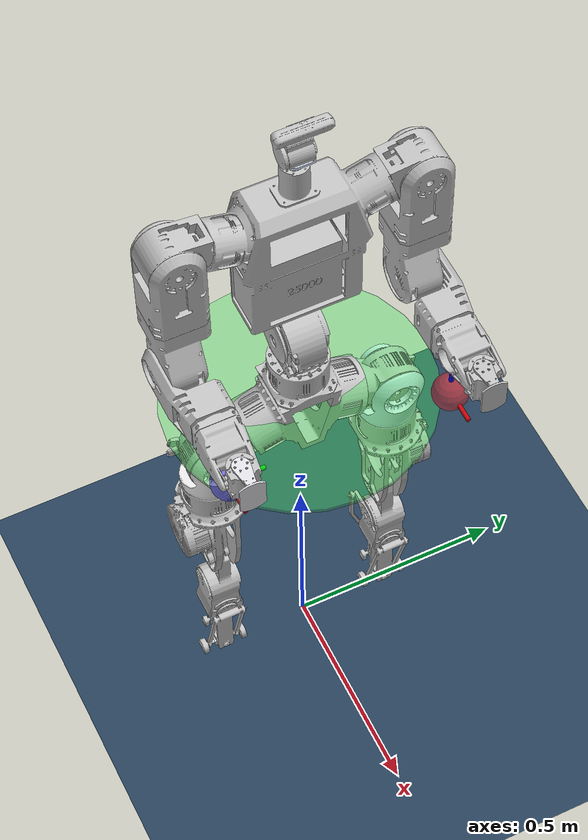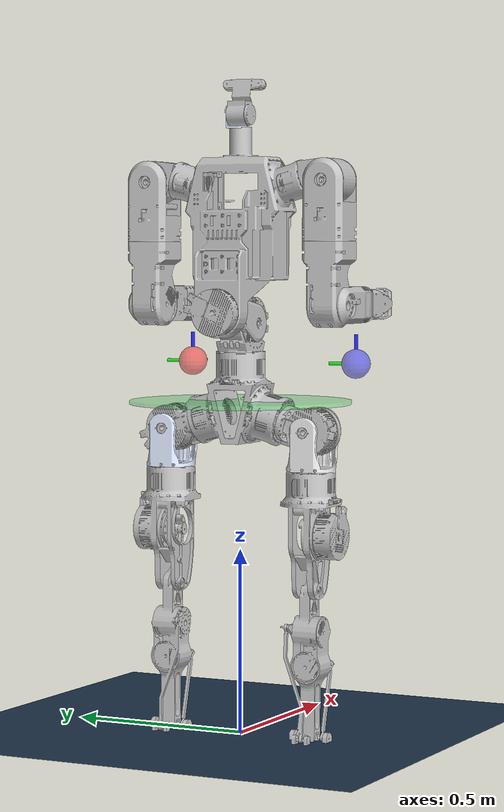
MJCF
<mujoco model="hv1 scene interactive">

  <include file="/home/rabisankar/IsaacLab/source/isaaclab_assets/data/custom_robot/urdf_mesh/hv1/hv1.xml"/>

  <statistic center="0.0 0.0 1.0" extent="2.0"/>

  <visual>
    <headlight diffuse="0.6 0.6 0.6" ambient="0.1 0.1 0.1" specular="0.9 0.9 0.9"/>
    <rgba haze="0.15 0.25 0.35 1"/>
    <global azimuth="-140" elevation="-20"/>
  </visual>

  <asset>
    <texture type="skybox" builtin="flat" rgb1="0 0 0" rgb2="0 0 0" width="512" height="3072"/>
    <texture type="2d" name="groundplane" builtin="checker" mark="edge"
             rgb1="0.2 0.3 0.4" rgb2="0.1 0.2 0.3" markrgb="0.8 0.8 0.8"
             width="300" height="300"/>
    <material name="groundplane" texture="groundplane" texuniform="true"
              texrepeat="5 5" reflectance="0.2"/>
  </asset>

  <worldbody>
    <light pos="1 0 3.5" dir="0 0 -1" directional="true"/>
    <geom name="floor" size="0 0 0.05" type="plane" material="groundplane"/>

    <!-- Left EE target: red translucent sphere. Initial pose ≈ default
         standing left wrist in world frame. -->
    <body name="left_ee_target" mocap="true" pos="0.20 0.25 1.00" quat="1 0 0 0">
      <geom type="sphere" size="0.04" rgba="1.0 0.2 0.2 0.55"
            contype="0" conaffinity="0" group="2"/>
      <!-- Small axis triad so orientation is visible -->
      <geom type="cylinder" fromto="0 0 0  0.08 0 0" size="0.005"
            rgba="1 0 0 0.8" contype="0" conaffinity="0" group="2"/>
      <geom type="cylinder" fromto="0 0 0  0 0.08 0" size="0.005"
            rgba="0 1 0 0.8" contype="0" conaffinity="0" group="2"/>
      <geom type="cylinder" fromto="0 0 0  0 0 0.08" size="0.005"
            rgba="0 0 1 0.8" contype="0" conaffinity="0" group="2"/>
    </body>

    <!-- Right EE target: blue translucent sphere -->
    <body name="right_ee_target" mocap="true" pos="0.20 -0.25 1.00" quat="1 0 0 0">
      <geom type="sphere" size="0.04" rgba="0.2 0.2 1.0 0.55"
            contype="0" conaffinity="0" group="2"/>
      <geom type="cylinder" fromto="0 0 0  0.08 0 0" size="0.005"
            rgba="1 0 0 0.8" contype="0" conaffinity="0" group="2"/>
      <geom type="cylinder" fromto="0 0 0  0 0.08 0" size="0.005"
            rgba="0 1 0 0.8" contype="0" conaffinity="0" group="2"/>
      <geom type="cylinder" fromto="0 0 0  0 0 0.08" size="0.005"
            rgba="0 0 1 0.8" contype="0" conaffinity="0" group="2"/>
    </body>

    <!-- Body-height target: thin green disk anchored to world XY=0, only
         Z is read by the deploy script. Drag UP/DOWN to set target height. -->
    <body name="body_height_target" mocap="true" pos="0 0 0.90" quat="1 0 0 0">
      <geom type="cylinder" size="0.30 0.005" rgba="0.2 0.9 0.3 0.35"
            contype="0" conaffinity="0" group="2"/>
    </body>
  </worldbody>

</mujoco>

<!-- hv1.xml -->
<mujoco model="HV1">
  <compiler angle="radian"/>

  <option timestep="0.005" iterations="50" solver="Newton" gravity="0 0 -9.81"/>

  <default>
    <!-- Legs class: hip_*, knee, waist_* (Isaac "legs" actuator: 85 Nm, X12-320) -->
    <default class="legs_joint">
      <joint damping="0.350134" armature="0.326938" frictionloss="1.694307"/>
    </default>
    <!-- Ankle/wrist-roll class: X6-60, 20 Nm -->
    <default class="ankle_wristroll_joint">
      <joint damping="0.165640" armature="0.019603" frictionloss="0.321816"/>
    </default>
    <!-- Shoulder/elbow class: X8-120, 43 Nm -->
    <default class="shoulder_elbow_joint">
      <joint damping="0.379237" armature="0.065893" frictionloss="0.849291"/>
    </default>
    <!-- Wrist-pitch/yaw + neck class: X4-36, 10.5 Nm -->
    <default class="wrist_neck_joint">
      <joint damping="0.154954" armature="0.045213" frictionloss="0.388995"/>
    </default>
    <!-- Robot-body geom class — scoped via childclass on pelvis so the world
         floor in scene.xml stays at MuJoCo's default contype=1, conaffinity=1. -->
    <default class="robot">
      <geom contype="1" conaffinity="0"/>
    </default>
  </default>

  <asset>
    <mesh name="pelvis" content_type="model/stl" file="meshes/pelvis.STL"/>
    <mesh name="left_hip_pitch_link" content_type="model/stl" file="meshes/left_hip_pitch_link.STL"/>
    <mesh name="left_hip_roll_link" content_type="model/stl" file="meshes/left_hip_roll_link.STL"/>
    <mesh name="left_hip_yaw_link" content_type="model/stl" file="meshes/left_hip_yaw_link.STL"/>
    <mesh name="left_knee_link" content_type="model/stl" file="meshes/left_knee_link.STL"/>
    <mesh name="left_ankle_roll_link" content_type="model/stl" file="meshes/left_ankle_roll_link.STL"/>
    <mesh name="left_ankle_pitch_link" content_type="model/stl" file="meshes/left_ankle_pitch_link.STL"/>
    <mesh name="right_hip_pitch_link" content_type="model/stl" file="meshes/right_hip_pitch_link.STL"/>
    <mesh name="right_hip_roll_link" content_type="model/stl" file="meshes/right_hip_roll_link.STL"/>
    <mesh name="right_hip_yaw_link" content_type="model/stl" file="meshes/right_hip_yaw_link.STL"/>
    <mesh name="right_knee_link" content_type="model/stl" file="meshes/right_knee_link.STL"/>
    <mesh name="right_ankle_roll_link" content_type="model/stl" file="meshes/right_ankle_roll_link.STL"/>
    <mesh name="right_ankle_pitch_link" content_type="model/stl" file="meshes/right_ankle_pitch_link.STL"/>
    <mesh name="imu_in_pelvis" content_type="model/stl" file="meshes/imu_in_pelvis.STL"/>
    <mesh name="waist_yaw_link" content_type="model/stl" file="meshes/waist_yaw_link.STL"/>
    <mesh name="waist_pitch_link" content_type="model/stl" file="meshes/waist_pitch_link.STL"/>
    <mesh name="torso_link" content_type="model/stl" file="meshes/torso_link.STL"/>
    <mesh name="left_shoulder_pitch_link" content_type="model/stl" file="meshes/left_shoulder_pitch_link.STL"/>
    <mesh name="left_shoulder_roll_link" content_type="model/stl" file="meshes/left_shoulder_roll_link.STL"/>
    <mesh name="left_shoulder_yaw_link" content_type="model/stl" file="meshes/left_shoulder_yaw_link.STL"/>
    <mesh name="left_elbow_link" content_type="model/stl" file="meshes/left_elbow_link.STL"/>
    <mesh name="left_wrist_roll_link" content_type="model/stl" file="meshes/left_wrist_roll_link.STL"/>
    <mesh name="left_wrist_pitch_link" content_type="model/stl" file="meshes/left_wrist_pitch_link.STL"/>
    <mesh name="left_wrist_yaw_link" content_type="model/stl" file="meshes/left_wrist_yaw_link.STL"/>
    <mesh name="right_shoulder_pitch_link" content_type="model/stl" file="meshes/right_shoulder_pitch_link.STL"/>
    <mesh name="right_shoulder_roll_link" content_type="model/stl" file="meshes/right_shoulder_roll_link.STL"/>
    <mesh name="right_shoulder_yaw_link" content_type="model/stl" file="meshes/right_shoulder_yaw_link.STL"/>
    <mesh name="right_elbow_link" content_type="model/stl" file="meshes/right_elbow_link.STL"/>
    <mesh name="right_wrist_roll_link" content_type="model/stl" file="meshes/right_wrist_roll_link.STL"/>
    <mesh name="right_wrist_pitch_link" content_type="model/stl" file="meshes/right_wrist_pitch_link.STL"/>
    <mesh name="right_wrist_yaw_link" content_type="model/stl" file="meshes/right_wrist_yaw_link.STL"/>
    <mesh name="neck_yaw_link" content_type="model/stl" file="meshes/neck_yaw_link.STL"/>
    <mesh name="neck_pitch_link" content_type="model/stl" file="meshes/neck_pitch_link.STL"/>
    <mesh name="imu_in_torso" content_type="model/stl" file="meshes/imu_in_torso.STL"/>
  </asset>

  <worldbody>
    <body name="pelvis" pos="0 0 0.95" childclass="robot">
      <freejoint name="floating_base"/>
      <inertial pos="-0.000236 -0.0000623 -0.051576" mass="10.3903"
                fullinertia="0.0211744 0.0243495 0.0203452  0.0000043 0.0000107 0.0000217"/>
      <geom type="mesh" rgba="0.752941 0.752941 0.752941 1" mesh="pelvis"/>
      <geom pos="0.0343 0 -0.042735" quat="1 0 0 0" type="mesh" rgba="0.894118 0.894118 0.894118 1" mesh="imu_in_pelvis"/>
      <!-- IMU site: co-located with the imu_in_pelvis mesh. Frame matches pelvis. -->
      <site name="pelvis_imu" pos="0.0343 0 -0.042735" size="0.01" rgba="1 0 0 0.5"/>
    <body name="left_hip_pitch_link" pos="0 0.13208 -0.10265">
      <inertial pos="0.00483274 0.0704971 -0.0195285" quat="0.78602 0.614887 -0.051529 -0.037835" mass="3.0167" diaginertia="0.00543229 0.00403479 0.00381494"/>
      <joint name="left_hip_pitch_joint" class="legs_joint" pos="0 0 0" axis="0 0.965926 0.258819" range="-3.14 2.5" actuatorfrcrange="-85 85"/>
      <geom type="mesh" rgba="0.752941 0.752941 0.752941 1" mesh="left_hip_pitch_link"/>
      <body name="left_hip_roll_link" pos="0.0485 0.079206 -0.021223">
        <inertial pos="-0.0365728 0.000249622 -0.0546008" quat="0.980258 -0.00304566 0.197697 0.000859755" mass="0.776313" diaginertia="0.00293913 0.00254554 0.00119342"/>
        <joint name="left_hip_roll_joint" class="legs_joint" pos="0 0 0" axis="1 0 0" range="-0.43 3.14" actuatorfrcrange="-85 85"/>
        <geom type="mesh" rgba="0.866667 0.909804 1 1" mesh="left_hip_roll_link"/>
        <body name="left_hip_yaw_link" pos="-0.052 0 -0.106">
          <inertial pos="0.000366468 0.0175814 -0.1195" quat="0.701261 0.0220365 -0.00737475 0.712526" mass="6.72716" diaginertia="0.0182557 0.0153229 0.0112839"/>
          <joint name="left_hip_yaw_joint" class="legs_joint" pos="0 0 0" axis="0 0 1" range="-2.67 2.67" actuatorfrcrange="-85 85"/>
          <geom type="mesh" rgba="0.752941 0.752941 0.752941 1" mesh="left_hip_yaw_link"/>
          <body name="left_knee_link" pos="0 -0.0065 -0.3205">
            <inertial pos="0.00322132 0.00169505 -0.167878" quat="0.633562 0.0101238 -0.00733655 0.773591" mass="4.09904" diaginertia="0.0184953 0.0183524 0.00245948"/>
            <joint name="left_knee_joint" class="legs_joint" pos="0 0 0" axis="0 1 0" range="-0.26 2.18" actuatorfrcrange="-85 85"/>
            <geom type="mesh" rgba="0.752941 0.752941 0.752941 1" mesh="left_knee_link"/>
            <body name="left_ankle_roll_link" pos="0 0.0065 -0.392">
              <inertial pos="8.95514e-06 0 0" quat="0.5 0.5 -0.5 0.5" mass="0.0154781" diaginertia="4.81146e-06 4.4609e-06 8.20118e-07"/>
              <joint name="left_ankle_roll_joint" class="ankle_wristroll_joint" pos="0 0 0" axis="1 0 0" range="-0.26 0.26" actuatorfrcrange="-20 20"/>
              <geom type="mesh" rgba="0.894118 0.894118 0.894118 1" mesh="left_ankle_roll_link"/>
              <body name="left_ankle_pitch_link">
                <inertial pos="0.0196301 -2.67911e-06 -0.0348675" quat="-7.97636e-06 0.709256 7.92795e-06 0.704951" mass="0.903664" diaginertia="0.00482039 0.00381196 0.00110912"/>
                <joint name="left_ankle_pitch_joint" class="ankle_wristroll_joint" pos="0 0 0" axis="0 1 0" range="-0.82 0.58" actuatorfrcrange="-20 20"/>
                <geom type="mesh" rgba="0.752941 0.752941 0.752941 1" mesh="left_ankle_pitch_link"/>
              </body>
            </body>
          </body>
        </body>
      </body>
    </body>
    <body name="right_hip_pitch_link" pos="0 -0.13208 -0.10265">
      <inertial pos="0.00483272 -0.0705397 -0.0193008" quat="0.675909 0.734067 0.0267163 0.0598248" mass="3.01669" diaginertia="0.00543333 0.00403538 0.00381341"/>
      <joint name="right_hip_pitch_joint" class="legs_joint" pos="0 0 0" axis="0 0.965926 0.258819" range="-3.14 2.5" actuatorfrcrange="-85 85"/>
      <geom type="mesh" rgba="0.752941 0.752941 0.752941 1" mesh="right_hip_pitch_link"/>
      <body name="right_hip_roll_link" pos="0.0485 -0.079206 -0.021223">
        <inertial pos="-0.0365723 -0.000247812 -0.0546008" quat="0.980258 0.00300383 0.197698 -0.00088811" mass="0.776323" diaginertia="0.00293914 0.00254556 0.00119343"/>
        <joint name="right_hip_roll_joint" class="legs_joint" pos="0 0 0" axis="1 0 0" range="-3.14 0.43" actuatorfrcrange="-85 85"/>
        <geom type="mesh" rgba="0.894118 0.894118 0.894118 1" mesh="right_hip_roll_link"/>
        <body name="right_hip_yaw_link" pos="-0.052 0 -0.106">
          <inertial pos="0.000282723 -0.017669 -0.118293" quat="0.708894 -0.015184 0.0118055 0.705053" mass="6.72421" diaginertia="0.0182514 0.015368 0.0112394"/>
          <joint name="right_hip_yaw_joint" class="legs_joint" pos="0 0 0" axis="0 0 1" range="-2.67 2.67" actuatorfrcrange="-85 85"/>
          <geom type="mesh" rgba="0.752941 0.752941 0.752941 1" mesh="right_hip_yaw_link"/>
          <body name="right_knee_link" pos="0 0.0065 -0.3205">
            <inertial pos="0.00321609 -0.00188437 -0.16769" quat="0.748939 -0.00667082 0.0100022 0.66253" mass="4.09903" diaginertia="0.0184981 0.0183598 0.00244914"/>
            <joint name="right_knee_joint" class="legs_joint" pos="0 0 0" axis="0 1 0" range="-0.26 2.18" actuatorfrcrange="-85 85"/>
            <geom type="mesh" rgba="0.752941 0.752941 0.752941 1" mesh="right_knee_link"/>
            <body name="right_ankle_roll_link" pos="0 -0.0065 -0.392">
              <inertial pos="8.95514e-06 0 0" quat="0.5 0.5 -0.5 0.5" mass="0.0154781" diaginertia="4.81146e-06 4.4609e-06 8.20118e-07"/>
              <joint name="right_ankle_roll_joint" class="ankle_wristroll_joint" pos="0 0 0" axis="1 0 0" range="-0.26 0.26" actuatorfrcrange="-20 20"/>
              <geom type="mesh" rgba="0.894118 0.894118 0.894118 1" mesh="right_ankle_roll_link"/>
              <body name="right_ankle_pitch_link">
                <inertial pos="0.0196301 -2.67911e-06 -0.0348675" quat="-7.97636e-06 0.709256 7.92795e-06 0.704951" mass="0.903664" diaginertia="0.00482039 0.00381196 0.00110912"/>
                <joint name="right_ankle_pitch_joint" class="ankle_wristroll_joint" pos="0 0 0" axis="0 1 0" range="-0.82 0.58" actuatorfrcrange="-20 20"/>
                <geom type="mesh" rgba="0.752941 0.752941 0.752941 1" mesh="right_ankle_pitch_link"/>
              </body>
            </body>
          </body>
        </body>
      </body>
    </body>
    <body name="waist_yaw_link" pos="0 0 0.0875">
      <inertial pos="0.00106763 -0.00351212 0.0702907" quat="0.711153 0.0356497 0.0344189 0.701289" mass="3.52405" diaginertia="0.00847798 0.00595924 0.00539317"/>
      <joint name="waist_yaw_joint" class="legs_joint" pos="0 0 0" axis="0 0 1" range="-3.14 1.57" actuatorfrcrange="-85 85"/>
      <geom type="mesh" rgba="0.752941 0.752941 0.752941 1" mesh="waist_yaw_link"/>
      <body name="waist_pitch_link" pos="0 0.04025 0.0755">
        <inertial pos="-0.108717 -0.0406682 0.0272727" quat="0.91203 0.287754 -0.242748 -0.162704" mass="3.4556" diaginertia="0.00588002 0.0053455 0.00456862"/>
        <joint name="waist_pitch_joint" class="legs_joint" pos="0 0 0" axis="0 1 0" range="-0.52 0.52" actuatorfrcrange="-85 85"/>
        <geom type="mesh" rgba="0.752941 0.752941 0.752941 1" mesh="waist_pitch_link"/>
        <body name="torso_link" pos="-0.0925 -0.04025 0.03">
          <inertial pos="0.0658056 -0.000104581 0.228454" quat="0.999947 0.00395278 0.00943533 -0.000832899" mass="14.0691" diaginertia="0.0574848 0.0531728 0.0402983"/>
          <joint name="waist_roll_joint" class="legs_joint" pos="0 0 0" axis="1 0 0" range="-0.52 0.52" actuatorfrcrange="-85 85"/>
          <geom type="mesh" rgba="0.752941 0.752941 0.752941 1" mesh="torso_link"/>
          <geom pos="0.0207 0 0.29526" quat="1 0 0 0" type="mesh" rgba="0.894118 0.894118 0.894118 1" mesh="imu_in_torso"/>
          <body name="left_shoulder_pitch_link" pos="0.0925 0.1869 0.35301">
            <inertial pos="0.000150758 0.0707509 -0.00286616" quat="0.986917 0.161204 -0.000301733 0.00267541" mass="1.96424" diaginertia="0.00249227 0.00216789 0.00169732"/>
            <joint name="left_shoulder_pitch_joint" class="shoulder_elbow_joint" pos="0 0 0" axis="0 0.965926 0.258819" range="-3.14 1.57" actuatorfrcrange="-43 43"/>
            <geom type="mesh" rgba="0.752941 0.752941 0.752941 1" mesh="left_shoulder_pitch_link"/>
            <body name="left_shoulder_roll_link" pos="0.037988 0.07537 -0.0040807">
              <inertial pos="-0.0396925 0.000466431 -0.109971" quat="0.999993 0.0002161 -0.00359568 -0.000676973" mass="2.473" diaginertia="0.00636281 0.00518225 0.00319655"/>
              <joint name="left_shoulder_roll_joint" class="shoulder_elbow_joint" pos="0 0 0" axis="1 0 0" range="-0.17 3.25" actuatorfrcrange="-43 43"/>
              <geom type="mesh" rgba="0.752941 0.752941 0.752941 1" mesh="left_shoulder_roll_link"/>
              <body name="left_shoulder_yaw_link" pos="-0.0398 0 -0.169">
                <inertial pos="-0.00198643 0.00117443 -0.125515" quat="0.999974 0.00508104 8.14146e-05 -0.00518414" mass="2.52009" diaginertia="0.00662519 0.00619923 0.00265348"/>
                <joint name="left_shoulder_yaw_joint" class="shoulder_elbow_joint" pos="0 0 0" axis="0 0 1" range="-3.01 2.66" actuatorfrcrange="-43 43"/>
                <geom type="mesh" rgba="0.752941 0.752941 0.752941 1" mesh="left_shoulder_yaw_link"/>
                <body name="left_elbow_link" pos="0 0.03825 -0.161">
                  <inertial pos="0.119955 -0.0289779 4.4903e-05" quat="0.527393 0.531452 0.46868 0.46878" mass="1.48569" diaginertia="0.00302591 0.00251457 0.00137851"/>
                  <joint name="left_elbow_joint" class="shoulder_elbow_joint" pos="0 0 0" axis="0 1 0" range="-0.79 3.14" actuatorfrcrange="-43 43"/>
                  <geom type="mesh" rgba="0.752941 0.752941 0.752941 1" mesh="left_elbow_link"/>
                  <body name="left_wrist_roll_link" pos="0.17 -0.03825 0">
                    <inertial pos="0.0408022 0.0053213 0.000180153" quat="0.260818 0.656732 -0.230306 0.669056" mass="0.519866" diaginertia="0.000563482 0.000511851 0.000444086"/>
                    <joint name="left_wrist_roll_joint" class="ankle_wristroll_joint" pos="0 0 0" axis="1 0 0" range="-2.97 2.97" actuatorfrcrange="-20 20"/>
                    <geom type="mesh" rgba="0.752941 0.752941 0.752941 1" mesh="left_wrist_roll_link"/>
                    <body name="left_wrist_pitch_link" pos="0.129 0.044 0">
                      <inertial pos="0.000242638 -0.044818 -0.000392583" quat="0.708336 0.705021 0.0077674 0.0338435" mass="0.20994" diaginertia="0.00015074 0.000144851 0.000119176"/>
                      <joint name="left_wrist_pitch_joint" class="wrist_neck_joint" pos="0 0 0" axis="0 1 0" range="-0.47 0.47" actuatorfrcrange="-10.5 10.5"/>
                      <geom type="mesh" rgba="0.752941 0.752941 0.752941 1" mesh="left_wrist_pitch_link"/>
                      <body name="left_wrist_yaw_link" pos="0 -0.0445 0.0305">
                        <inertial pos="0.0301222 0 -0.0287392" quat="0.999951 0 0.00993273 0" mass="0.126552" diaginertia="5.82099e-05 5.6808e-05 3.34558e-05"/>
                        <joint name="left_wrist_yaw_joint" class="wrist_neck_joint" pos="0 0 0" axis="0 0 1" range="-1.012 1.012" actuatorfrcrange="-10.5 10.5"/>
                        <geom type="mesh" rgba="0.752941 0.752941 0.752941 1" mesh="left_wrist_yaw_link"/>
                      </body>
                    </body>
                  </body>
                </body>
              </body>
            </body>
          </body>
          <body name="right_shoulder_pitch_link" pos="0.0925 -0.1869 0.35301">
            <inertial pos="0.000150771 -0.0707348 -0.00289051" quat="0.986925 -0.161168 4.82501e-05 -0.00199661" mass="1.96423" diaginertia="0.00249225 0.00216804 0.00169717"/>
            <joint name="right_shoulder_pitch_joint" class="shoulder_elbow_joint" pos="0 0 0" axis="0 0.965926 0.258819" range="-3.14 1.57" actuatorfrcrange="-43 43"/>
            <geom type="mesh" rgba="0.752941 0.752941 0.752941 1" mesh="right_shoulder_pitch_link"/>
            <body name="right_shoulder_roll_link" pos="0.037988 -0.07537 -0.0040807">
              <inertial pos="-0.0396307 -0.000413646 -0.109971" quat="0.999993 0.000460213 -0.00379218 0.000329633" mass="2.473" diaginertia="0.00636312 0.00518196 0.00319653"/>
              <joint name="right_shoulder_roll_joint" class="shoulder_elbow_joint" pos="0 0 0" axis="1 0 0" range="-3.25 0.17" actuatorfrcrange="-43 43"/>
              <geom type="mesh" rgba="0.752941 0.752941 0.752941 1" mesh="right_shoulder_roll_link"/>
              <body name="right_shoulder_yaw_link" pos="-0.0398 0 -0.169">
                <inertial pos="-0.00196887 -0.00117442 -0.125533" quat="0.999974 -0.00507061 8.12743e-05 0.00510172" mass="2.52009" diaginertia="0.00662526 0.00619923 0.00265341"/>
                <joint name="right_shoulder_yaw_joint" class="shoulder_elbow_joint" pos="0 0 0" axis="0 0 1" range="-3.01 2.66" actuatorfrcrange="-43 43"/>
                <geom type="mesh" rgba="0.752941 0.752941 0.752941 1" mesh="right_shoulder_yaw_link"/>
                <body name="right_elbow_link" pos="0 -0.03825 -0.161">
                  <inertial pos="0.119955 0.0289593 -9.97404e-05" quat="0.468406 0.468822 0.528768 0.530289" mass="1.48569" diaginertia="0.00302667 0.00251399 0.00137834"/>
                  <joint name="right_elbow_joint" class="shoulder_elbow_joint" pos="0 0 0" axis="0 1 0" range="-0.79 3.14" actuatorfrcrange="-43 43"/>
                  <geom type="mesh" rgba="0.752941 0.752941 0.752941 1" mesh="right_elbow_link"/>
                  <body name="right_wrist_roll_link" pos="0.17 0.03825 0">
                    <inertial pos="0.0415453 -0.005343 5.39896e-05" quat="-0.252722 0.657124 0.237704 0.66919" mass="0.519866" diaginertia="0.000563372 0.000511782 0.000444265"/>
                    <joint name="right_wrist_roll_joint" class="ankle_wristroll_joint" pos="0 0 0" axis="1 0 0" range="-2.97 2.97" actuatorfrcrange="-20 20"/>
                    <geom type="mesh" rgba="0.752941 0.752941 0.752941 1" mesh="right_wrist_roll_link"/>
                    <body name="right_wrist_pitch_link" pos="0.13 -0.0445 0">
                      <inertial pos="0.000165004 0.0449111 -0.000392583" quat="0.710079 0.703347 -0.010577 -0.0312868" mass="0.20994" diaginertia="0.000150903 0.000144856 0.000119008"/>
                      <joint name="right_wrist_pitch_joint" class="wrist_neck_joint" pos="0 0 0" axis="0 1 0" range="-0.47 0.47" actuatorfrcrange="-10.5 10.5"/>
                      <geom type="mesh" rgba="0.752941 0.752941 0.752941 1" mesh="right_wrist_pitch_link"/>
                      <body name="right_wrist_yaw_link" pos="0 0.0445 0.0305">
                        <inertial pos="0.0301222 0 -0.0287392" quat="0.999951 0 0.00993273 0" mass="0.126552" diaginertia="5.82099e-05 5.6808e-05 3.34558e-05"/>
                        <joint name="right_wrist_yaw_joint" class="wrist_neck_joint" pos="0 0 0" axis="0 0 1" range="-1.012 1.012" actuatorfrcrange="-10.5 10.5"/>
                        <geom type="mesh" rgba="0.866667 0.866667 0.890196 1" mesh="right_wrist_yaw_link"/>
                      </body>
                    </body>
                  </body>
                </body>
              </body>
            </body>
          </body>
          <body name="neck_yaw_link" pos="0.0925 0 0.489">
            <inertial pos="0 0.0212651 0.0162389" quat="0.382746 0.923853 0 0" mass="0.0533179" diaginertia="2.68512e-05 2.66715e-05 1.00472e-05"/>
            <joint name="neck_yaw_joint" class="wrist_neck_joint" pos="0 0 0" axis="0 0 1" range="-1.4 1.4" actuatorfrcrange="-10.5 10.5"/>
            <geom type="mesh" rgba="0.866667 0.909804 1 1" mesh="neck_yaw_link"/>
            <body name="neck_pitch_link" pos="0 0.03 0.0375">
              <inertial pos="0.0274823 -0.0258209 0.0756767" quat="0.702266 0.700779 0.0887399 -0.0886304" mass="2.44042" diaginertia="0.00279441 0.00274641 0.000384701"/>
              <joint name="neck_pitch_joint" class="wrist_neck_joint" pos="0 0 0" axis="0 1 0" range="-1.05 1.05" actuatorfrcrange="-10.5 10.5"/>
              <geom type="mesh" rgba="0.752941 0.752941 0.752941 1" mesh="neck_pitch_link"/>
            </body>
          </body>
        </body>
      </body>
    </body>
    </body>
  </worldbody>

  <!-- Motor actuators so MuJoCo viewer (and any d.ctrl-based script) can drive joints. -->
  <actuator>
    <motor name="left_hip_pitch"       joint="left_hip_pitch_joint"       gear="1" ctrlrange="-85 85"/>
    <motor name="left_hip_roll"        joint="left_hip_roll_joint"        gear="1" ctrlrange="-85 85"/>
    <motor name="left_hip_yaw"         joint="left_hip_yaw_joint"         gear="1" ctrlrange="-85 85"/>
    <motor name="left_knee"            joint="left_knee_joint"            gear="1" ctrlrange="-85 85"/>
    <motor name="left_ankle_roll"      joint="left_ankle_roll_joint"      gear="1" ctrlrange="-20 20"/>
    <motor name="left_ankle_pitch"     joint="left_ankle_pitch_joint"     gear="1" ctrlrange="-20 20"/>
    <motor name="right_hip_pitch"      joint="right_hip_pitch_joint"      gear="1" ctrlrange="-85 85"/>
    <motor name="right_hip_roll"       joint="right_hip_roll_joint"       gear="1" ctrlrange="-85 85"/>
    <motor name="right_hip_yaw"        joint="right_hip_yaw_joint"        gear="1" ctrlrange="-85 85"/>
    <motor name="right_knee"           joint="right_knee_joint"           gear="1" ctrlrange="-85 85"/>
    <motor name="right_ankle_roll"     joint="right_ankle_roll_joint"     gear="1" ctrlrange="-20 20"/>
    <motor name="right_ankle_pitch"    joint="right_ankle_pitch_joint"    gear="1" ctrlrange="-20 20"/>
    <motor name="waist_yaw"            joint="waist_yaw_joint"            gear="1" ctrlrange="-85 85"/>
    <motor name="waist_pitch"          joint="waist_pitch_joint"          gear="1" ctrlrange="-85 85"/>
    <motor name="waist_roll"           joint="waist_roll_joint"           gear="1" ctrlrange="-85 85"/>
    <motor name="left_shoulder_pitch"  joint="left_shoulder_pitch_joint"  gear="1" ctrlrange="-43 43"/>
    <motor name="left_shoulder_roll"   joint="left_shoulder_roll_joint"   gear="1" ctrlrange="-43 43"/>
    <motor name="left_shoulder_yaw"    joint="left_shoulder_yaw_joint"    gear="1" ctrlrange="-43 43"/>
    <motor name="left_elbow"           joint="left_elbow_joint"           gear="1" ctrlrange="-43 43"/>
    <motor name="left_wrist_roll"      joint="left_wrist_roll_joint"      gear="1" ctrlrange="-20 20"/>
    <motor name="left_wrist_pitch"     joint="left_wrist_pitch_joint"     gear="1" ctrlrange="-10.5 10.5"/>
    <motor name="left_wrist_yaw"       joint="left_wrist_yaw_joint"       gear="1" ctrlrange="-10.5 10.5"/>
    <motor name="right_shoulder_pitch" joint="right_shoulder_pitch_joint" gear="1" ctrlrange="-43 43"/>
    <motor name="right_shoulder_roll"  joint="right_shoulder_roll_joint"  gear="1" ctrlrange="-43 43"/>
    <motor name="right_shoulder_yaw"   joint="right_shoulder_yaw_joint"   gear="1" ctrlrange="-43 43"/>
    <motor name="right_elbow"          joint="right_elbow_joint"          gear="1" ctrlrange="-43 43"/>
    <motor name="right_wrist_roll"     joint="right_wrist_roll_joint"     gear="1" ctrlrange="-20 20"/>
    <motor name="right_wrist_pitch"    joint="right_wrist_pitch_joint"    gear="1" ctrlrange="-10.5 10.5"/>
    <motor name="right_wrist_yaw"      joint="right_wrist_yaw_joint"      gear="1" ctrlrange="-10.5 10.5"/>
    <motor name="neck_yaw"             joint="neck_yaw_joint"             gear="1" ctrlrange="-10.5 10.5"/>
    <motor name="neck_pitch"           joint="neck_pitch_joint"           gear="1" ctrlrange="-10.5 10.5"/>
  </actuator>

  <sensor>
    <!-- Joint position encoders (31) -->
    <jointpos name="left_hip_pitch_pos"        joint="left_hip_pitch_joint"/>
    <jointpos name="left_hip_roll_pos"         joint="left_hip_roll_joint"/>
    <jointpos name="left_hip_yaw_pos"          joint="left_hip_yaw_joint"/>
    <jointpos name="left_knee_pos"             joint="left_knee_joint"/>
    <jointpos name="left_ankle_roll_pos"       joint="left_ankle_roll_joint"/>
    <jointpos name="left_ankle_pitch_pos"      joint="left_ankle_pitch_joint"/>
    <jointpos name="right_hip_pitch_pos"       joint="right_hip_pitch_joint"/>
    <jointpos name="right_hip_roll_pos"        joint="right_hip_roll_joint"/>
    <jointpos name="right_hip_yaw_pos"         joint="right_hip_yaw_joint"/>
    <jointpos name="right_knee_pos"            joint="right_knee_joint"/>
    <jointpos name="right_ankle_roll_pos"      joint="right_ankle_roll_joint"/>
    <jointpos name="right_ankle_pitch_pos"     joint="right_ankle_pitch_joint"/>
    <jointpos name="waist_yaw_pos"             joint="waist_yaw_joint"/>
    <jointpos name="waist_pitch_pos"           joint="waist_pitch_joint"/>
    <jointpos name="waist_roll_pos"            joint="waist_roll_joint"/>
    <jointpos name="left_shoulder_pitch_pos"   joint="left_shoulder_pitch_joint"/>
    <jointpos name="left_shoulder_roll_pos"    joint="left_shoulder_roll_joint"/>
    <jointpos name="left_shoulder_yaw_pos"     joint="left_shoulder_yaw_joint"/>
    <jointpos name="left_elbow_pos"            joint="left_elbow_joint"/>
    <jointpos name="left_wrist_roll_pos"       joint="left_wrist_roll_joint"/>
    <jointpos name="left_wrist_pitch_pos"      joint="left_wrist_pitch_joint"/>
    <jointpos name="left_wrist_yaw_pos"        joint="left_wrist_yaw_joint"/>
    <jointpos name="right_shoulder_pitch_pos"  joint="right_shoulder_pitch_joint"/>
    <jointpos name="right_shoulder_roll_pos"   joint="right_shoulder_roll_joint"/>
    <jointpos name="right_shoulder_yaw_pos"    joint="right_shoulder_yaw_joint"/>
    <jointpos name="right_elbow_pos"           joint="right_elbow_joint"/>
    <jointpos name="right_wrist_roll_pos"      joint="right_wrist_roll_joint"/>
    <jointpos name="right_wrist_pitch_pos"     joint="right_wrist_pitch_joint"/>
    <jointpos name="right_wrist_yaw_pos"       joint="right_wrist_yaw_joint"/>
    <jointpos name="neck_yaw_pos"              joint="neck_yaw_joint"/>
    <jointpos name="neck_pitch_pos"            joint="neck_pitch_joint"/>

    <!-- Joint velocity encoders (31) -->
    <jointvel name="left_hip_pitch_vel"        joint="left_hip_pitch_joint"/>
    <jointvel name="left_hip_roll_vel"         joint="left_hip_roll_joint"/>
    <jointvel name="left_hip_yaw_vel"          joint="left_hip_yaw_joint"/>
    <jointvel name="left_knee_vel"             joint="left_knee_joint"/>
    <jointvel name="left_ankle_roll_vel"       joint="left_ankle_roll_joint"/>
    <jointvel name="left_ankle_pitch_vel"      joint="left_ankle_pitch_joint"/>
    <jointvel name="right_hip_pitch_vel"       joint="right_hip_pitch_joint"/>
    <jointvel name="right_hip_roll_vel"        joint="right_hip_roll_joint"/>
    <jointvel name="right_hip_yaw_vel"         joint="right_hip_yaw_joint"/>
    <jointvel name="right_knee_vel"            joint="right_knee_joint"/>
    <jointvel name="right_ankle_roll_vel"      joint="right_ankle_roll_joint"/>
    <jointvel name="right_ankle_pitch_vel"     joint="right_ankle_pitch_joint"/>
    <jointvel name="waist_yaw_vel"             joint="waist_yaw_joint"/>
    <jointvel name="waist_pitch_vel"           joint="waist_pitch_joint"/>
    <jointvel name="waist_roll_vel"            joint="waist_roll_joint"/>
    <jointvel name="left_shoulder_pitch_vel"   joint="left_shoulder_pitch_joint"/>
    <jointvel name="left_shoulder_roll_vel"    joint="left_shoulder_roll_joint"/>
    <jointvel name="left_shoulder_yaw_vel"     joint="left_shoulder_yaw_joint"/>
    <jointvel name="left_elbow_vel"            joint="left_elbow_joint"/>
    <jointvel name="left_wrist_roll_vel"       joint="left_wrist_roll_joint"/>
    <jointvel name="left_wrist_pitch_vel"      joint="left_wrist_pitch_joint"/>
    <jointvel name="left_wrist_yaw_vel"        joint="left_wrist_yaw_joint"/>
    <jointvel name="right_shoulder_pitch_vel"  joint="right_shoulder_pitch_joint"/>
    <jointvel name="right_shoulder_roll_vel"   joint="right_shoulder_roll_joint"/>
    <jointvel name="right_shoulder_yaw_vel"    joint="right_shoulder_yaw_joint"/>
    <jointvel name="right_elbow_vel"           joint="right_elbow_joint"/>
    <jointvel name="right_wrist_roll_vel"      joint="right_wrist_roll_joint"/>
    <jointvel name="right_wrist_pitch_vel"     joint="right_wrist_pitch_joint"/>
    <jointvel name="right_wrist_yaw_vel"       joint="right_wrist_yaw_joint"/>
    <jointvel name="neck_yaw_vel"              joint="neck_yaw_joint"/>
    <jointvel name="neck_pitch_vel"            joint="neck_pitch_joint"/>

    <!-- Motor torque feedback (31) — what the actuator actually produced -->
    <actuatorfrc name="left_hip_pitch_trq"       actuator="left_hip_pitch"/>
    <actuatorfrc name="left_hip_roll_trq"        actuator="left_hip_roll"/>
    <actuatorfrc name="left_hip_yaw_trq"         actuator="left_hip_yaw"/>
    <actuatorfrc name="left_knee_trq"            actuator="left_knee"/>
    <actuatorfrc name="left_ankle_roll_trq"      actuator="left_ankle_roll"/>
    <actuatorfrc name="left_ankle_pitch_trq"     actuator="left_ankle_pitch"/>
    <actuatorfrc name="right_hip_pitch_trq"      actuator="right_hip_pitch"/>
    <actuatorfrc name="right_hip_roll_trq"       actuator="right_hip_roll"/>
    <actuatorfrc name="right_hip_yaw_trq"        actuator="right_hip_yaw"/>
    <actuatorfrc name="right_knee_trq"           actuator="right_knee"/>
    <actuatorfrc name="right_ankle_roll_trq"     actuator="right_ankle_roll"/>
    <actuatorfrc name="right_ankle_pitch_trq"    actuator="right_ankle_pitch"/>
    <actuatorfrc name="waist_yaw_trq"            actuator="waist_yaw"/>
    <actuatorfrc name="waist_pitch_trq"          actuator="waist_pitch"/>
    <actuatorfrc name="waist_roll_trq"           actuator="waist_roll"/>
    <actuatorfrc name="left_shoulder_pitch_trq"  actuator="left_shoulder_pitch"/>
    <actuatorfrc name="left_shoulder_roll_trq"   actuator="left_shoulder_roll"/>
    <actuatorfrc name="left_shoulder_yaw_trq"    actuator="left_shoulder_yaw"/>
    <actuatorfrc name="left_elbow_trq"           actuator="left_elbow"/>
    <actuatorfrc name="left_wrist_roll_trq"      actuator="left_wrist_roll"/>
    <actuatorfrc name="left_wrist_pitch_trq"     actuator="left_wrist_pitch"/>
    <actuatorfrc name="left_wrist_yaw_trq"       actuator="left_wrist_yaw"/>
    <actuatorfrc name="right_shoulder_pitch_trq" actuator="right_shoulder_pitch"/>
    <actuatorfrc name="right_shoulder_roll_trq"  actuator="right_shoulder_roll"/>
    <actuatorfrc name="right_shoulder_yaw_trq"   actuator="right_shoulder_yaw"/>
    <actuatorfrc name="right_elbow_trq"          actuator="right_elbow"/>
    <actuatorfrc name="right_wrist_roll_trq"     actuator="right_wrist_roll"/>
    <actuatorfrc name="right_wrist_pitch_trq"    actuator="right_wrist_pitch"/>
    <actuatorfrc name="right_wrist_yaw_trq"      actuator="right_wrist_yaw"/>
    <actuatorfrc name="neck_yaw_trq"             actuator="neck_yaw"/>
    <actuatorfrc name="neck_pitch_trq"           actuator="neck_pitch"/>

    <!-- Pelvis IMU: orientation, angular vel (gyro), linear vel, accel -->
    <framequat    name="pelvis_quat"    objtype="site" objname="pelvis_imu"/>
    <gyro         name="pelvis_gyro"    site="pelvis_imu"/>
    <velocimeter  name="pelvis_lin_vel" site="pelvis_imu"/>
    <accelerometer name="pelvis_accel"  site="pelvis_imu"/>
  </sensor>

  <!-- Default standing pose — load via mujoco.mj_resetDataKeyframe(model, data, 0). -->
  <!-- qpos order: 3 (base xyz) + 4 (base quat wxyz) + 31 joints (MuJoCo tree order). -->
  <keyframe>
    <key name="home"
         qpos="0 0 0.95   1 0 0 0
               -0.2 0 0 0.4 0 -0.2
               -0.2 0 0 0.4 0 -0.2
               0 0 0
               0.3 0 0 0.3 0 0 0
               0.3 0 0 0.3 0 0 0
               0 0"/>
  </keyframe>
</mujoco>
